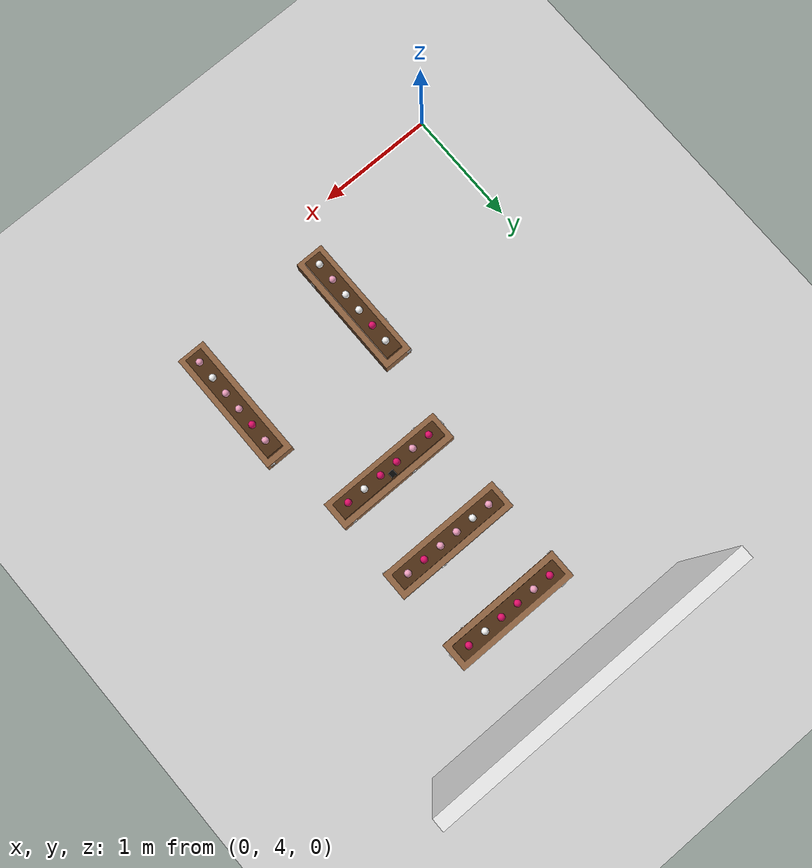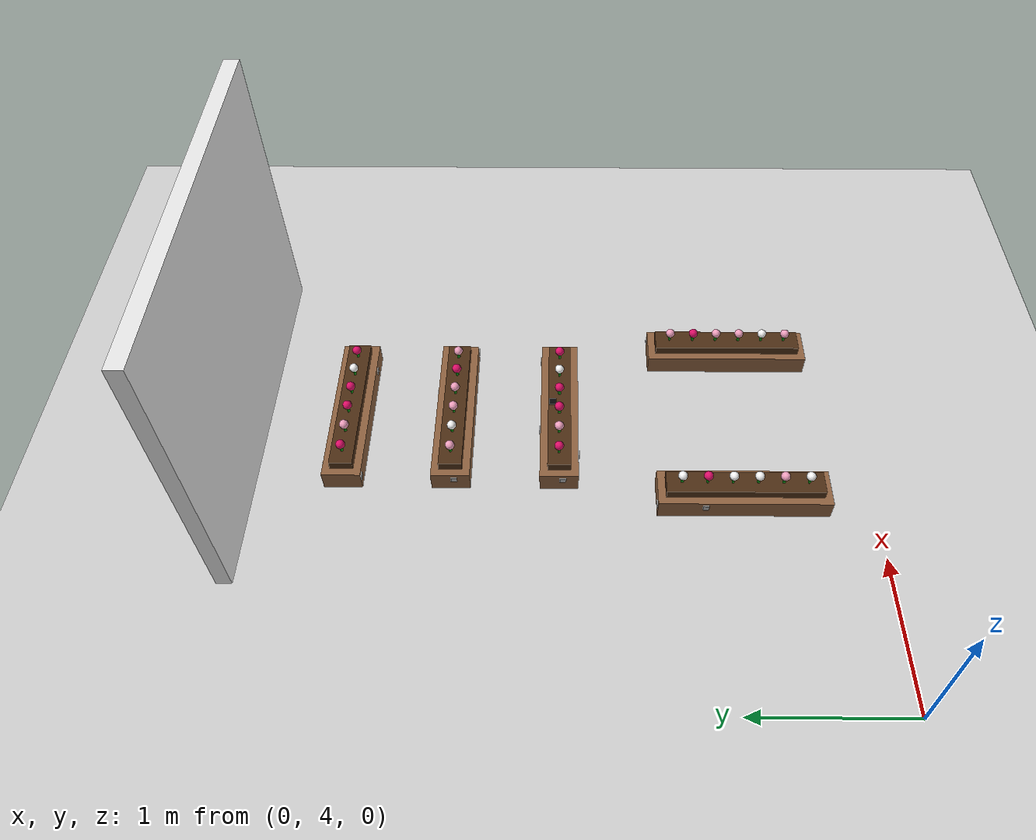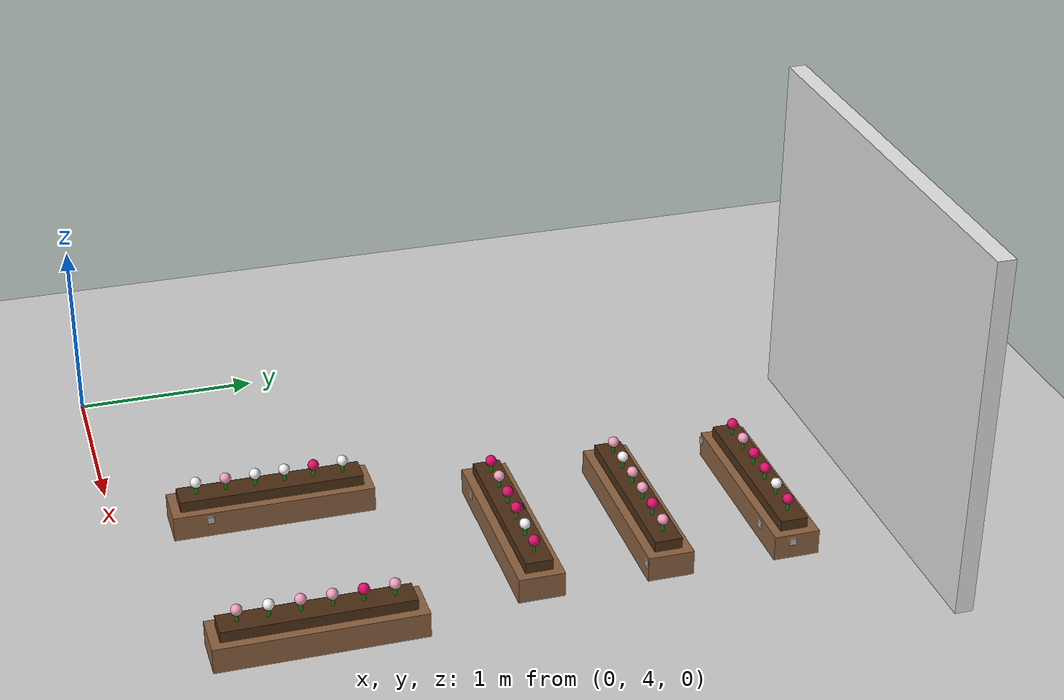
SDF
<sdf version="1.6">
 <world name="greenhouse">
  <include><uri>model://sun</uri></include>
  <include><uri>model://ground_plane</uri></include>
  <model name="wall_north">
   <static>true</static>
   <pose>2.0500 8.0500 1.0000 0 0 0</pose>
   <link name="link">
    <collision name="collision"><geometry><box><size>2.5000 0.1000 2.0000</size></box></geometry></collision>
    <visual name="visual">
     <geometry><box><size>2.5000 0.1000 2.0000</size></box></geometry>
     <material><ambient>0.85 0.85 0.85 1</ambient><diffuse>0.90 0.90 0.90 1</diffuse></material>
    </visual>
   </link>
  </model>
  <model name="table1">
   <static>true</static>
   <pose>2.0500 7.4250 0.0700 0 0 0</pose>
   <link name="link">
    <collision name="collision"><geometry><box><size>1.1000 0.2500 0.1400</size></box></geometry></collision>
    <visual name="visual">
     <geometry><box><size>1.1000 0.2500 0.1400</size></box></geometry>
     <material><ambient>0.45 0.30 0.20 1</ambient><diffuse>0.55 0.38 0.25 1</diffuse></material>
    </visual>
   </link>
  </model>
  <model name="table2">
   <static>true</static>
   <pose>2.0500 6.7250 0.0700 0 0 0</pose>
   <link name="link">
    <collision name="collision"><geometry><box><size>1.1000 0.2500 0.1400</size></box></geometry></collision>
    <visual name="visual">
     <geometry><box><size>1.1000 0.2500 0.1400</size></box></geometry>
     <material><ambient>0.45 0.30 0.20 1</ambient><diffuse>0.55 0.38 0.25 1</diffuse></material>
    </visual>
   </link>
  </model>
  <model name="table3">
   <static>true</static>
   <pose>2.0500 6.0250 0.0700 0 0 0</pose>
   <link name="link">
    <collision name="collision"><geometry><box><size>1.1000 0.2500 0.1400</size></box></geometry></collision>
    <visual name="visual">
     <geometry><box><size>1.1000 0.2500 0.1400</size></box></geometry>
     <material><ambient>0.45 0.30 0.20 1</ambient><diffuse>0.55 0.38 0.25 1</diffuse></material>
    </visual>
   </link>
  </model>
  <model name="table4">
   <static>true</static>
   <pose>1.4250 4.8500 0.0700 0 0 0</pose>
   <link name="link">
    <collision name="collision"><geometry><box><size>0.2500 1.1000 0.1400</size></box></geometry></collision>
    <visual name="visual">
     <geometry><box><size>0.2500 1.1000 0.1400</size></box></geometry>
     <material><ambient>0.45 0.30 0.20 1</ambient><diffuse>0.55 0.38 0.25 1</diffuse></material>
    </visual>
   </link>
  </model>
  <model name="table5">
   <static>true</static>
   <pose>2.6250 4.8500 0.0700 0 0 0</pose>
   <link name="link">
    <collision name="collision"><geometry><box><size>0.2500 1.1000 0.1400</size></box></geometry></collision>
    <visual name="visual">
     <geometry><box><size>0.2500 1.1000 0.1400</size></box></geometry>
     <material><ambient>0.45 0.30 0.20 1</ambient><diffuse>0.55 0.38 0.25 1</diffuse></material>
    </visual>
   </link>
  </model>
  <model name="trough_table_0">
   <static>true</static>
   <pose>2.0500 7.4250 0.1700 0 0 0</pose>
   <link name="link">
    <visual name="visual">
     <geometry><box><size>1.0000 0.1500 0.0600</size></box></geometry>
     <material><ambient>0.20 0.12 0.05 1</ambient><diffuse>0.30 0.18 0.08 1</diffuse></material>
    </visual>
   </link>
  </model>
  <model name="flower_0_red">
   <static>true</static>
   <pose>1.6500 7.4250 0 0 0 0</pose>
   <link name="link">
    <visual name="stem">
     <pose>0 0 0.2250 0 0 0</pose>
     <geometry><cylinder><radius>0.009</radius><length>0.0500</length></cylinder></geometry>
     <material><ambient>0.05 0.40 0.05 1</ambient><diffuse>0.05 0.52 0.05 1</diffuse></material>
    </visual>
    <visual name="blossom">
     <pose>0 0 0.2665 0 0 0</pose>
     <geometry><sphere><radius>0.0300</radius></sphere></geometry>
     <material>
      <ambient>0.32 0.02 0.15 1</ambient>
      <diffuse>0.86 0.05 0.40 1</diffuse>
      <emissive>0.40 0.00 0.18 1</emissive>
     </material>
    </visual>
   </link>
  </model>
  <model name="flower_1_pink">
   <static>true</static>
   <pose>1.8100 7.4250 0 0 0 0</pose>
   <link name="link">
    <visual name="stem">
     <pose>0 0 0.2250 0 0 0</pose>
     <geometry><cylinder><radius>0.009</radius><length>0.0500</length></cylinder></geometry>
     <material><ambient>0.05 0.40 0.05 1</ambient><diffuse>0.05 0.52 0.05 1</diffuse></material>
    </visual>
    <visual name="blossom">
     <pose>0 0 0.2665 0 0 0</pose>
     <geometry><sphere><radius>0.0300</radius></sphere></geometry>
     <material>
      <ambient>0.40 0.26 0.31 1</ambient>
      <diffuse>0.93 0.62 0.74 1</diffuse>
      <emissive>0.18 0.06 0.11 1</emissive>
     </material>
    </visual>
   </link>
  </model>
  <model name="flower_2_red">
   <static>true</static>
   <pose>1.9700 7.4250 0 0 0 0</pose>
   <link name="link">
    <visual name="stem">
     <pose>0 0 0.2250 0 0 0</pose>
     <geometry><cylinder><radius>0.009</radius><length>0.0500</length></cylinder></geometry>
     <material><ambient>0.05 0.40 0.05 1</ambient><diffuse>0.05 0.52 0.05 1</diffuse></material>
    </visual>
    <visual name="blossom">
     <pose>0 0 0.2665 0 0 0</pose>
     <geometry><sphere><radius>0.0300</radius></sphere></geometry>
     <material>
      <ambient>0.32 0.02 0.15 1</ambient>
      <diffuse>0.86 0.05 0.40 1</diffuse>
      <emissive>0.40 0.00 0.18 1</emissive>
     </material>
    </visual>
   </link>
  </model>
  <model name="flower_3_red">
   <static>true</static>
   <pose>2.1300 7.4250 0 0 0 0</pose>
   <link name="link">
    <visual name="stem">
     <pose>0 0 0.2250 0 0 0</pose>
     <geometry><cylinder><radius>0.009</radius><length>0.0500</length></cylinder></geometry>
     <material><ambient>0.05 0.40 0.05 1</ambient><diffuse>0.05 0.52 0.05 1</diffuse></material>
    </visual>
    <visual name="blossom">
     <pose>0 0 0.2665 0 0 0</pose>
     <geometry><sphere><radius>0.0300</radius></sphere></geometry>
     <material>
      <ambient>0.32 0.02 0.15 1</ambient>
      <diffuse>0.86 0.05 0.40 1</diffuse>
      <emissive>0.40 0.00 0.18 1</emissive>
     </material>
    </visual>
   </link>
  </model>
  <model name="flower_4_white">
   <static>true</static>
   <pose>2.2900 7.4250 0 0 0 0</pose>
   <link name="link">
    <visual name="stem">
     <pose>0 0 0.2250 0 0 0</pose>
     <geometry><cylinder><radius>0.009</radius><length>0.0500</length></cylinder></geometry>
     <material><ambient>0.05 0.40 0.05 1</ambient><diffuse>0.05 0.52 0.05 1</diffuse></material>
    </visual>
    <visual name="blossom">
     <pose>0 0 0.2665 0 0 0</pose>
     <geometry><sphere><radius>0.0300</radius></sphere></geometry>
     <material>
      <ambient>0.42 0.42 0.42 1</ambient>
      <diffuse>0.95 0.95 0.95 1</diffuse>
      <emissive>0.40 0.40 0.40 1</emissive>
     </material>
    </visual>
   </link>
  </model>
  <model name="flower_5_red">
   <static>true</static>
   <pose>2.4500 7.4250 0 0 0 0</pose>
   <link name="link">
    <visual name="stem">
     <pose>0 0 0.2250 0 0 0</pose>
     <geometry><cylinder><radius>0.009</radius><length>0.0500</length></cylinder></geometry>
     <material><ambient>0.05 0.40 0.05 1</ambient><diffuse>0.05 0.52 0.05 1</diffuse></material>
    </visual>
    <visual name="blossom">
     <pose>0 0 0.2665 0 0 0</pose>
     <geometry><sphere><radius>0.0300</radius></sphere></geometry>
     <material>
      <ambient>0.32 0.02 0.15 1</ambient>
      <diffuse>0.86 0.05 0.40 1</diffuse>
      <emissive>0.40 0.00 0.18 1</emissive>
     </material>
    </visual>
   </link>
  </model>
  <model name="trough_table_2">
   <static>true</static>
   <pose>2.0500 6.7250 0.1700 0 0 0</pose>
   <link name="link">
    <visual name="visual">
     <geometry><box><size>1.0000 0.1500 0.0600</size></box></geometry>
     <material><ambient>0.20 0.12 0.05 1</ambient><diffuse>0.30 0.18 0.08 1</diffuse></material>
    </visual>
   </link>
  </model>
  <model name="flower_12_pink">
   <static>true</static>
   <pose>1.6500 6.7250 0 0 0 0</pose>
   <link name="link">
    <visual name="stem">
     <pose>0 0 0.2250 0 0 0</pose>
     <geometry><cylinder><radius>0.009</radius><length>0.0500</length></cylinder></geometry>
     <material><ambient>0.05 0.40 0.05 1</ambient><diffuse>0.05 0.52 0.05 1</diffuse></material>
    </visual>
    <visual name="blossom">
     <pose>0 0 0.2665 0 0 0</pose>
     <geometry><sphere><radius>0.0300</radius></sphere></geometry>
     <material>
      <ambient>0.40 0.26 0.31 1</ambient>
      <diffuse>0.93 0.62 0.74 1</diffuse>
      <emissive>0.18 0.06 0.11 1</emissive>
     </material>
    </visual>
   </link>
  </model>
  <model name="flower_13_white">
   <static>true</static>
   <pose>1.8100 6.7250 0 0 0 0</pose>
   <link name="link">
    <visual name="stem">
     <pose>0 0 0.2250 0 0 0</pose>
     <geometry><cylinder><radius>0.009</radius><length>0.0500</length></cylinder></geometry>
     <material><ambient>0.05 0.40 0.05 1</ambient><diffuse>0.05 0.52 0.05 1</diffuse></material>
    </visual>
    <visual name="blossom">
     <pose>0 0 0.2665 0 0 0</pose>
     <geometry><sphere><radius>0.0300</radius></sphere></geometry>
     <material>
      <ambient>0.42 0.42 0.42 1</ambient>
      <diffuse>0.95 0.95 0.95 1</diffuse>
      <emissive>0.40 0.40 0.40 1</emissive>
     </material>
    </visual>
   </link>
  </model>
  <model name="flower_14_pink">
   <static>true</static>
   <pose>1.9700 6.7250 0 0 0 0</pose>
   <link name="link">
    <visual name="stem">
     <pose>0 0 0.2250 0 0 0</pose>
     <geometry><cylinder><radius>0.009</radius><length>0.0500</length></cylinder></geometry>
     <material><ambient>0.05 0.40 0.05 1</ambient><diffuse>0.05 0.52 0.05 1</diffuse></material>
    </visual>
    <visual name="blossom">
     <pose>0 0 0.2665 0 0 0</pose>
     <geometry><sphere><radius>0.0300</radius></sphere></geometry>
     <material>
      <ambient>0.40 0.26 0.31 1</ambient>
      <diffuse>0.93 0.62 0.74 1</diffuse>
      <emissive>0.18 0.06 0.11 1</emissive>
     </material>
    </visual>
   </link>
  </model>
  <model name="flower_15_pink">
   <static>true</static>
   <pose>2.1300 6.7250 0 0 0 0</pose>
   <link name="link">
    <visual name="stem">
     <pose>0 0 0.2250 0 0 0</pose>
     <geometry><cylinder><radius>0.009</radius><length>0.0500</length></cylinder></geometry>
     <material><ambient>0.05 0.40 0.05 1</ambient><diffuse>0.05 0.52 0.05 1</diffuse></material>
    </visual>
    <visual name="blossom">
     <pose>0 0 0.2665 0 0 0</pose>
     <geometry><sphere><radius>0.0300</radius></sphere></geometry>
     <material>
      <ambient>0.40 0.26 0.31 1</ambient>
      <diffuse>0.93 0.62 0.74 1</diffuse>
      <emissive>0.18 0.06 0.11 1</emissive>
     </material>
    </visual>
   </link>
  </model>
  <model name="flower_16_red">
   <static>true</static>
   <pose>2.2900 6.7250 0 0 0 0</pose>
   <link name="link">
    <visual name="stem">
     <pose>0 0 0.2250 0 0 0</pose>
     <geometry><cylinder><radius>0.009</radius><length>0.0500</length></cylinder></geometry>
     <material><ambient>0.05 0.40 0.05 1</ambient><diffuse>0.05 0.52 0.05 1</diffuse></material>
    </visual>
    <visual name="blossom">
     <pose>0 0 0.2665 0 0 0</pose>
     <geometry><sphere><radius>0.0300</radius></sphere></geometry>
     <material>
      <ambient>0.32 0.02 0.15 1</ambient>
      <diffuse>0.86 0.05 0.40 1</diffuse>
      <emissive>0.40 0.00 0.18 1</emissive>
     </material>
    </visual>
   </link>
  </model>
  <model name="flower_17_pink">
   <static>true</static>
   <pose>2.4500 6.7250 0 0 0 0</pose>
   <link name="link">
    <visual name="stem">
     <pose>0 0 0.2250 0 0 0</pose>
     <geometry><cylinder><radius>0.009</radius><length>0.0500</length></cylinder></geometry>
     <material><ambient>0.05 0.40 0.05 1</ambient><diffuse>0.05 0.52 0.05 1</diffuse></material>
    </visual>
    <visual name="blossom">
     <pose>0 0 0.2665 0 0 0</pose>
     <geometry><sphere><radius>0.0300</radius></sphere></geometry>
     <material>
      <ambient>0.40 0.26 0.31 1</ambient>
      <diffuse>0.93 0.62 0.74 1</diffuse>
      <emissive>0.18 0.06 0.11 1</emissive>
     </material>
    </visual>
   </link>
  </model>
  <model name="trough_table_3">
   <static>true</static>
   <pose>2.0500 6.0250 0.1700 0 0 0</pose>
   <link name="link">
    <visual name="visual">
     <geometry><box><size>1.0000 0.1500 0.0600</size></box></geometry>
     <material><ambient>0.20 0.12 0.05 1</ambient><diffuse>0.30 0.18 0.08 1</diffuse></material>
    </visual>
   </link>
  </model>
  <model name="flower_18_red">
   <static>true</static>
   <pose>1.6500 6.0250 0 0 0 0</pose>
   <link name="link">
    <visual name="stem">
     <pose>0 0 0.2250 0 0 0</pose>
     <geometry><cylinder><radius>0.009</radius><length>0.0500</length></cylinder></geometry>
     <material><ambient>0.05 0.40 0.05 1</ambient><diffuse>0.05 0.52 0.05 1</diffuse></material>
    </visual>
    <visual name="blossom">
     <pose>0 0 0.2665 0 0 0</pose>
     <geometry><sphere><radius>0.0300</radius></sphere></geometry>
     <material>
      <ambient>0.32 0.02 0.15 1</ambient>
      <diffuse>0.86 0.05 0.40 1</diffuse>
      <emissive>0.40 0.00 0.18 1</emissive>
     </material>
    </visual>
   </link>
  </model>
  <model name="flower_19_pink">
   <static>true</static>
   <pose>1.8100 6.0250 0 0 0 0</pose>
   <link name="link">
    <visual name="stem">
     <pose>0 0 0.2250 0 0 0</pose>
     <geometry><cylinder><radius>0.009</radius><length>0.0500</length></cylinder></geometry>
     <material><ambient>0.05 0.40 0.05 1</ambient><diffuse>0.05 0.52 0.05 1</diffuse></material>
    </visual>
    <visual name="blossom">
     <pose>0 0 0.2665 0 0 0</pose>
     <geometry><sphere><radius>0.0300</radius></sphere></geometry>
     <material>
      <ambient>0.40 0.26 0.31 1</ambient>
      <diffuse>0.93 0.62 0.74 1</diffuse>
      <emissive>0.18 0.06 0.11 1</emissive>
     </material>
    </visual>
   </link>
  </model>
  <model name="flower_20_red">
   <static>true</static>
   <pose>1.9700 6.0250 0 0 0 0</pose>
   <link name="link">
    <visual name="stem">
     <pose>0 0 0.2250 0 0 0</pose>
     <geometry><cylinder><radius>0.009</radius><length>0.0500</length></cylinder></geometry>
     <material><ambient>0.05 0.40 0.05 1</ambient><diffuse>0.05 0.52 0.05 1</diffuse></material>
    </visual>
    <visual name="blossom">
     <pose>0 0 0.2665 0 0 0</pose>
     <geometry><sphere><radius>0.0300</radius></sphere></geometry>
     <material>
      <ambient>0.32 0.02 0.15 1</ambient>
      <diffuse>0.86 0.05 0.40 1</diffuse>
      <emissive>0.40 0.00 0.18 1</emissive>
     </material>
    </visual>
   </link>
  </model>
  <model name="flower_21_red">
   <static>true</static>
   <pose>2.1300 6.0250 0 0 0 0</pose>
   <link name="link">
    <visual name="stem">
     <pose>0 0 0.2250 0 0 0</pose>
     <geometry><cylinder><radius>0.009</radius><length>0.0500</length></cylinder></geometry>
     <material><ambient>0.05 0.40 0.05 1</ambient><diffuse>0.05 0.52 0.05 1</diffuse></material>
    </visual>
    <visual name="blossom">
     <pose>0 0 0.2665 0 0 0</pose>
     <geometry><sphere><radius>0.0300</radius></sphere></geometry>
     <material>
      <ambient>0.32 0.02 0.15 1</ambient>
      <diffuse>0.86 0.05 0.40 1</diffuse>
      <emissive>0.40 0.00 0.18 1</emissive>
     </material>
    </visual>
   </link>
  </model>
  <model name="flower_22_white">
   <static>true</static>
   <pose>2.2900 6.0250 0 0 0 0</pose>
   <link name="link">
    <visual name="stem">
     <pose>0 0 0.2250 0 0 0</pose>
     <geometry><cylinder><radius>0.009</radius><length>0.0500</length></cylinder></geometry>
     <material><ambient>0.05 0.40 0.05 1</ambient><diffuse>0.05 0.52 0.05 1</diffuse></material>
    </visual>
    <visual name="blossom">
     <pose>0 0 0.2665 0 0 0</pose>
     <geometry><sphere><radius>0.0300</radius></sphere></geometry>
     <material>
      <ambient>0.42 0.42 0.42 1</ambient>
      <diffuse>0.95 0.95 0.95 1</diffuse>
      <emissive>0.40 0.40 0.40 1</emissive>
     </material>
    </visual>
   </link>
  </model>
  <model name="flower_23_red">
   <static>true</static>
   <pose>2.4500 6.0250 0 0 0 0</pose>
   <link name="link">
    <visual name="stem">
     <pose>0 0 0.2250 0 0 0</pose>
     <geometry><cylinder><radius>0.009</radius><length>0.0500</length></cylinder></geometry>
     <material><ambient>0.05 0.40 0.05 1</ambient><diffuse>0.05 0.52 0.05 1</diffuse></material>
    </visual>
    <visual name="blossom">
     <pose>0 0 0.2665 0 0 0</pose>
     <geometry><sphere><radius>0.0300</radius></sphere></geometry>
     <material>
      <ambient>0.32 0.02 0.15 1</ambient>
      <diffuse>0.86 0.05 0.40 1</diffuse>
      <emissive>0.40 0.00 0.18 1</emissive>
     </material>
    </visual>
   </link>
  </model>
  <model name="bug_24">
   <static>true</static>
   <pose>2.0500 6.0700 0.2150 0 0 0</pose>
   <link name="link">
    <visual name="visual">
     <geometry><box><size>0.0500 0.0500 0.008</size></box></geometry>
     <material><ambient>0.02 0.02 0.02 1</ambient><diffuse>0.02 0.02 0.02 1</diffuse></material>
    </visual>
   </link>
  </model>
  <model name="trough_table_4">
   <static>true</static>
   <pose>1.4250 4.8500 0.1700 0 0 0</pose>
   <link name="link">
    <visual name="visual">
     <geometry><box><size>0.1500 1.0000 0.0600</size></box></geometry>
     <material><ambient>0.20 0.12 0.05 1</ambient><diffuse>0.30 0.18 0.08 1</diffuse></material>
    </visual>
   </link>
  </model>
  <model name="flower_25_white">
   <static>true</static>
   <pose>1.4250 4.4500 0 0 0 0</pose>
   <link name="link">
    <visual name="stem">
     <pose>0 0 0.2250 0 0 0</pose>
     <geometry><cylinder><radius>0.009</radius><length>0.0500</length></cylinder></geometry>
     <material><ambient>0.05 0.40 0.05 1</ambient><diffuse>0.05 0.52 0.05 1</diffuse></material>
    </visual>
    <visual name="blossom">
     <pose>0 0 0.2665 0 0 0</pose>
     <geometry><sphere><radius>0.0300</radius></sphere></geometry>
     <material>
      <ambient>0.42 0.42 0.42 1</ambient>
      <diffuse>0.95 0.95 0.95 1</diffuse>
      <emissive>0.40 0.40 0.40 1</emissive>
     </material>
    </visual>
   </link>
  </model>
  <model name="flower_26_pink">
   <static>true</static>
   <pose>1.4250 4.6100 0 0 0 0</pose>
   <link name="link">
    <visual name="stem">
     <pose>0 0 0.2250 0 0 0</pose>
     <geometry><cylinder><radius>0.009</radius><length>0.0500</length></cylinder></geometry>
     <material><ambient>0.05 0.40 0.05 1</ambient><diffuse>0.05 0.52 0.05 1</diffuse></material>
    </visual>
    <visual name="blossom">
     <pose>0 0 0.2665 0 0 0</pose>
     <geometry><sphere><radius>0.0300</radius></sphere></geometry>
     <material>
      <ambient>0.40 0.26 0.31 1</ambient>
      <diffuse>0.93 0.62 0.74 1</diffuse>
      <emissive>0.18 0.06 0.11 1</emissive>
     </material>
    </visual>
   </link>
  </model>
  <model name="flower_27_white">
   <static>true</static>
   <pose>1.4250 4.7700 0 0 0 0</pose>
   <link name="link">
    <visual name="stem">
     <pose>0 0 0.2250 0 0 0</pose>
     <geometry><cylinder><radius>0.009</radius><length>0.0500</length></cylinder></geometry>
     <material><ambient>0.05 0.40 0.05 1</ambient><diffuse>0.05 0.52 0.05 1</diffuse></material>
    </visual>
    <visual name="blossom">
     <pose>0 0 0.2665 0 0 0</pose>
     <geometry><sphere><radius>0.0300</radius></sphere></geometry>
     <material>
      <ambient>0.42 0.42 0.42 1</ambient>
      <diffuse>0.95 0.95 0.95 1</diffuse>
      <emissive>0.40 0.40 0.40 1</emissive>
     </material>
    </visual>
   </link>
  </model>
  <model name="flower_28_white">
   <static>true</static>
   <pose>1.4250 4.9300 0 0 0 0</pose>
   <link name="link">
    <visual name="stem">
     <pose>0 0 0.2250 0 0 0</pose>
     <geometry><cylinder><radius>0.009</radius><length>0.0500</length></cylinder></geometry>
     <material><ambient>0.05 0.40 0.05 1</ambient><diffuse>0.05 0.52 0.05 1</diffuse></material>
    </visual>
    <visual name="blossom">
     <pose>0 0 0.2665 0 0 0</pose>
     <geometry><sphere><radius>0.0300</radius></sphere></geometry>
     <material>
      <ambient>0.42 0.42 0.42 1</ambient>
      <diffuse>0.95 0.95 0.95 1</diffuse>
      <emissive>0.40 0.40 0.40 1</emissive>
     </material>
    </visual>
   </link>
  </model>
  <model name="flower_29_red">
   <static>true</static>
   <pose>1.4250 5.0900 0 0 0 0</pose>
   <link name="link">
    <visual name="stem">
     <pose>0 0 0.2250 0 0 0</pose>
     <geometry><cylinder><radius>0.009</radius><length>0.0500</length></cylinder></geometry>
     <material><ambient>0.05 0.40 0.05 1</ambient><diffuse>0.05 0.52 0.05 1</diffuse></material>
    </visual>
    <visual name="blossom">
     <pose>0 0 0.2665 0 0 0</pose>
     <geometry><sphere><radius>0.0300</radius></sphere></geometry>
     <material>
      <ambient>0.32 0.02 0.15 1</ambient>
      <diffuse>0.86 0.05 0.40 1</diffuse>
      <emissive>0.40 0.00 0.18 1</emissive>
     </material>
    </visual>
   </link>
  </model>
  <model name="flower_30_white">
   <static>true</static>
   <pose>1.4250 5.2500 0 0 0 0</pose>
   <link name="link">
    <visual name="stem">
     <pose>0 0 0.2250 0 0 0</pose>
     <geometry><cylinder><radius>0.009</radius><length>0.0500</length></cylinder></geometry>
     <material><ambient>0.05 0.40 0.05 1</ambient><diffuse>0.05 0.52 0.05 1</diffuse></material>
    </visual>
    <visual name="blossom">
     <pose>0 0 0.2665 0 0 0</pose>
     <geometry><sphere><radius>0.0300</radius></sphere></geometry>
     <material>
      <ambient>0.42 0.42 0.42 1</ambient>
      <diffuse>0.95 0.95 0.95 1</diffuse>
      <emissive>0.40 0.40 0.40 1</emissive>
     </material>
    </visual>
   </link>
  </model>
  <model name="trough_table_5">
   <static>true</static>
   <pose>2.6250 4.8500 0.1700 0 0 0</pose>
   <link name="link">
    <visual name="visual">
     <geometry><box><size>0.1500 1.0000 0.0600</size></box></geometry>
     <material><ambient>0.20 0.12 0.05 1</ambient><diffuse>0.30 0.18 0.08 1</diffuse></material>
    </visual>
   </link>
  </model>
  <model name="flower_31_pink">
   <static>true</static>
   <pose>2.6250 4.4500 0 0 0 0</pose>
   <link name="link">
    <visual name="stem">
     <pose>0 0 0.2250 0 0 0</pose>
     <geometry><cylinder><radius>0.009</radius><length>0.0500</length></cylinder></geometry>
     <material><ambient>0.05 0.40 0.05 1</ambient><diffuse>0.05 0.52 0.05 1</diffuse></material>
    </visual>
    <visual name="blossom">
     <pose>0 0 0.2665 0 0 0</pose>
     <geometry><sphere><radius>0.0300</radius></sphere></geometry>
     <material>
      <ambient>0.40 0.26 0.31 1</ambient>
      <diffuse>0.93 0.62 0.74 1</diffuse>
      <emissive>0.18 0.06 0.11 1</emissive>
     </material>
    </visual>
   </link>
  </model>
  <model name="flower_32_white">
   <static>true</static>
   <pose>2.6250 4.6100 0 0 0 0</pose>
   <link name="link">
    <visual name="stem">
     <pose>0 0 0.2250 0 0 0</pose>
     <geometry><cylinder><radius>0.009</radius><length>0.0500</length></cylinder></geometry>
     <material><ambient>0.05 0.40 0.05 1</ambient><diffuse>0.05 0.52 0.05 1</diffuse></material>
    </visual>
    <visual name="blossom">
     <pose>0 0 0.2665 0 0 0</pose>
     <geometry><sphere><radius>0.0300</radius></sphere></geometry>
     <material>
      <ambient>0.42 0.42 0.42 1</ambient>
      <diffuse>0.95 0.95 0.95 1</diffuse>
      <emissive>0.40 0.40 0.40 1</emissive>
     </material>
    </visual>
   </link>
  </model>
  <model name="flower_33_pink">
   <static>true</static>
   <pose>2.6250 4.7700 0 0 0 0</pose>
   <link name="link">
    <visual name="stem">
     <pose>0 0 0.2250 0 0 0</pose>
     <geometry><cylinder><radius>0.009</radius><length>0.0500</length></cylinder></geometry>
     <material><ambient>0.05 0.40 0.05 1</ambient><diffuse>0.05 0.52 0.05 1</diffuse></material>
    </visual>
    <visual name="blossom">
     <pose>0 0 0.2665 0 0 0</pose>
     <geometry><sphere><radius>0.0300</radius></sphere></geometry>
     <material>
      <ambient>0.40 0.26 0.31 1</ambient>
      <diffuse>0.93 0.62 0.74 1</diffuse>
      <emissive>0.18 0.06 0.11 1</emissive>
     </material>
    </visual>
   </link>
  </model>
  <model name="flower_34_pink">
   <static>true</static>
   <pose>2.6250 4.9300 0 0 0 0</pose>
   <link name="link">
    <visual name="stem">
     <pose>0 0 0.2250 0 0 0</pose>
     <geometry><cylinder><radius>0.009</radius><length>0.0500</length></cylinder></geometry>
     <material><ambient>0.05 0.40 0.05 1</ambient><diffuse>0.05 0.52 0.05 1</diffuse></material>
    </visual>
    <visual name="blossom">
     <pose>0 0 0.2665 0 0 0</pose>
     <geometry><sphere><radius>0.0300</radius></sphere></geometry>
     <material>
      <ambient>0.40 0.26 0.31 1</ambient>
      <diffuse>0.93 0.62 0.74 1</diffuse>
      <emissive>0.18 0.06 0.11 1</emissive>
     </material>
    </visual>
   </link>
  </model>
  <model name="flower_35_red">
   <static>true</static>
   <pose>2.6250 5.0900 0 0 0 0</pose>
   <link name="link">
    <visual name="stem">
     <pose>0 0 0.2250 0 0 0</pose>
     <geometry><cylinder><radius>0.009</radius><length>0.0500</length></cylinder></geometry>
     <material><ambient>0.05 0.40 0.05 1</ambient><diffuse>0.05 0.52 0.05 1</diffuse></material>
    </visual>
    <visual name="blossom">
     <pose>0 0 0.2665 0 0 0</pose>
     <geometry><sphere><radius>0.0300</radius></sphere></geometry>
     <material>
      <ambient>0.32 0.02 0.15 1</ambient>
      <diffuse>0.86 0.05 0.40 1</diffuse>
      <emissive>0.40 0.00 0.18 1</emissive>
     </material>
    </visual>
   </link>
  </model>
  <model name="flower_36_pink">
   <static>true</static>
   <pose>2.6250 5.2500 0 0 0 0</pose>
   <link name="link">
    <visual name="stem">
     <pose>0 0 0.2250 0 0 0</pose>
     <geometry><cylinder><radius>0.009</radius><length>0.0500</length></cylinder></geometry>
     <material><ambient>0.05 0.40 0.05 1</ambient><diffuse>0.05 0.52 0.05 1</diffuse></material>
    </visual>
    <visual name="blossom">
     <pose>0 0 0.2665 0 0 0</pose>
     <geometry><sphere><radius>0.0300</radius></sphere></geometry>
     <material>
      <ambient>0.40 0.26 0.31 1</ambient>
      <diffuse>0.93 0.62 0.74 1</diffuse>
      <emissive>0.18 0.06 0.11 1</emissive>
     </material>
    </visual>
   </link>
  </model>
  <model name="apriltag_6">
   <static>true</static>
   <pose>1.5200 7.2950 0.1000 0 0 -1.570796</pose>
   <link name="link">
    <collision name="collision"><geometry><box><size>0.0050 0.0400 0.0400</size></box></geometry></collision>
    <visual name="bg_visual">
     <geometry><box><size>0.0050 0.0400 0.0400</size></box></geometry>
     <material><ambient>1.0 1.0 1.0 1</ambient><diffuse>1.0 1.0 1.0 1</diffuse></material>
    </visual>
    <visual name="tag_visual">
     <pose>0.0035 0 0 0 1.57079 0</pose>
     <geometry><plane><normal>0 0 1</normal><size>0.0360 0.0360</size></plane></geometry>
     <material>
      <script>
       <uri>model://apriltags/materials/scripts</uri>
       <uri>model://apriltags/materials/textures</uri>
       <name>AprilTag/Tag36h11_6</name>
      </script>
     </material>
    </visual>
   </link>
  </model>
  <model name="apriltag_7">
   <static>true</static>
   <pose>2.6050 7.4000 0.1000 0 0 0.000000</pose>
   <link name="link">
    <collision name="collision"><geometry><box><size>0.0050 0.0400 0.0400</size></box></geometry></collision>
    <visual name="bg_visual">
     <geometry><box><size>0.0050 0.0400 0.0400</size></box></geometry>
     <material><ambient>1.0 1.0 1.0 1</ambient><diffuse>1.0 1.0 1.0 1</diffuse></material>
    </visual>
    <visual name="tag_visual">
     <pose>0.0035 0 0 0 1.57079 0</pose>
     <geometry><plane><normal>0 0 1</normal><size>0.0360 0.0360</size></plane></geometry>
     <material>
      <script>
       <uri>model://apriltags/materials/scripts</uri>
       <uri>model://apriltags/materials/textures</uri>
       <name>AprilTag/Tag36h11_7</name>
      </script>
     </material>
    </visual>
   </link>
  </model>
  <model name="apriltag_9">
   <static>true</static>
   <pose>2.5800 6.5950 0.1000 0 0 -1.570796</pose>
   <link name="link">
    <collision name="collision"><geometry><box><size>0.0050 0.0400 0.0400</size></box></geometry></collision>
    <visual name="bg_visual">
     <geometry><box><size>0.0050 0.0400 0.0400</size></box></geometry>
     <material><ambient>1.0 1.0 1.0 1</ambient><diffuse>1.0 1.0 1.0 1</diffuse></material>
    </visual>
    <visual name="tag_visual">
     <pose>0.0035 0 0 0 1.57079 0</pose>
     <geometry><plane><normal>0 0 1</normal><size>0.0360 0.0360</size></plane></geometry>
     <material>
      <script>
       <uri>model://apriltags/materials/scripts</uri>
       <uri>model://apriltags/materials/textures</uri>
       <name>AprilTag/Tag36h11_9</name>
      </script>
     </material>
    </visual>
   </link>
  </model>
  <model name="apriltag_11">
   <static>true</static>
   <pose>1.2950 5.1000 0.1000 0 0 3.141593</pose>
   <link name="link">
    <collision name="collision"><geometry><box><size>0.0050 0.0400 0.0400</size></box></geometry></collision>
    <visual name="bg_visual">
     <geometry><box><size>0.0050 0.0400 0.0400</size></box></geometry>
     <material><ambient>1.0 1.0 1.0 1</ambient><diffuse>1.0 1.0 1.0 1</diffuse></material>
    </visual>
    <visual name="tag_visual">
     <pose>0.0035 0 0 0 1.57079 0</pose>
     <geometry><plane><normal>0 0 1</normal><size>0.0360 0.0360</size></plane></geometry>
     <material>
      <script>
       <uri>model://apriltags/materials/scripts</uri>
       <uri>model://apriltags/materials/textures</uri>
       <name>AprilTag/Tag36h11_11</name>
      </script>
     </material>
    </visual>
   </link>
  </model>
  <model name="apriltag_15">
   <static>true</static>
   <pose>1.7000 5.8950 0.1000 0 0 -1.570796</pose>
   <link name="link">
    <collision name="collision"><geometry><box><size>0.0050 0.0400 0.0400</size></box></geometry></collision>
    <visual name="bg_visual">
     <geometry><box><size>0.0050 0.0400 0.0400</size></box></geometry>
     <material><ambient>1.0 1.0 1.0 1</ambient><diffuse>1.0 1.0 1.0 1</diffuse></material>
    </visual>
    <visual name="tag_visual">
     <pose>0.0035 0 0 0 1.57079 0</pose>
     <geometry><plane><normal>0 0 1</normal><size>0.0360 0.0360</size></plane></geometry>
     <material>
      <script>
       <uri>model://apriltags/materials/scripts</uri>
       <uri>model://apriltags/materials/textures</uri>
       <name>AprilTag/Tag36h11_15</name>
      </script>
     </material>
    </visual>
   </link>
  </model>
  <model name="apriltag_21">
   <static>true</static>
   <pose>1.6000 7.5550 0.1000 0 0 1.570796</pose>
   <link name="link">
    <collision name="collision"><geometry><box><size>0.0050 0.0400 0.0400</size></box></geometry></collision>
    <visual name="bg_visual">
     <geometry><box><size>0.0050 0.0400 0.0400</size></box></geometry>
     <material><ambient>1.0 1.0 1.0 1</ambient><diffuse>1.0 1.0 1.0 1</diffuse></material>
    </visual>
    <visual name="tag_visual">
     <pose>0.0035 0 0 0 1.57079 0</pose>
     <geometry><plane><normal>0 0 1</normal><size>0.0360 0.0360</size></plane></geometry>
     <material>
      <script>
       <uri>model://apriltags/materials/scripts</uri>
       <uri>model://apriltags/materials/textures</uri>
       <name>AprilTag/Tag36h11_21</name>
      </script>
     </material>
    </visual>
   </link>
  </model>
  <model name="apriltag_22">
   <static>true</static>
   <pose>1.4950 6.0000 0.1000 0 0 3.141593</pose>
   <link name="link">
    <collision name="collision"><geometry><box><size>0.0050 0.0400 0.0400</size></box></geometry></collision>
    <visual name="bg_visual">
     <geometry><box><size>0.0050 0.0400 0.0400</size></box></geometry>
     <material><ambient>1.0 1.0 1.0 1</ambient><diffuse>1.0 1.0 1.0 1</diffuse></material>
    </visual>
    <visual name="tag_visual">
     <pose>0.0035 0 0 0 1.57079 0</pose>
     <geometry><plane><normal>0 0 1</normal><size>0.0360 0.0360</size></plane></geometry>
     <material>
      <script>
       <uri>model://apriltags/materials/scripts</uri>
       <uri>model://apriltags/materials/textures</uri>
       <name>AprilTag/Tag36h11_22</name>
      </script>
     </material>
    </visual>
   </link>
  </model>
  <model name="apriltag_23">
   <static>true</static>
   <pose>1.5550 4.5000 0.1000 0 0 0.000000</pose>
   <link name="link">
    <collision name="collision"><geometry><box><size>0.0050 0.0400 0.0400</size></box></geometry></collision>
    <visual name="bg_visual">
     <geometry><box><size>0.0050 0.0400 0.0400</size></box></geometry>
     <material><ambient>1.0 1.0 1.0 1</ambient><diffuse>1.0 1.0 1.0 1</diffuse></material>
    </visual>
    <visual name="tag_visual">
     <pose>0.0035 0 0 0 1.57079 0</pose>
     <geometry><plane><normal>0 0 1</normal><size>0.0360 0.0360</size></plane></geometry>
     <material>
      <script>
       <uri>model://apriltags/materials/scripts</uri>
       <uri>model://apriltags/materials/textures</uri>
       <name>AprilTag/Tag36h11_23</name>
      </script>
     </material>
    </visual>
   </link>
  </model>
  <model name="apriltag_24">
   <static>true</static>
   <pose>2.7000 5.4050 0.1000 0 0 1.570796</pose>
   <link name="link">
    <collision name="collision"><geometry><box><size>0.0050 0.0400 0.0400</size></box></geometry></collision>
    <visual name="bg_visual">
     <geometry><box><size>0.0050 0.0400 0.0400</size></box></geometry>
     <material><ambient>1.0 1.0 1.0 1</ambient><diffuse>1.0 1.0 1.0 1</diffuse></material>
    </visual>
    <visual name="tag_visual">
     <pose>0.0035 0 0 0 1.57079 0</pose>
     <geometry><plane><normal>0 0 1</normal><size>0.0360 0.0360</size></plane></geometry>
     <material>
      <script>
       <uri>model://apriltags/materials/scripts</uri>
       <uri>model://apriltags/materials/textures</uri>
       <name>AprilTag/Tag36h11_24</name>
      </script>
     </material>
    </visual>
   </link>
  </model>
  <model name="apriltag_25">
   <static>true</static>
   <pose>2.2000 6.8550 0.1000 0 0 1.570796</pose>
   <link name="link">
    <collision name="collision"><geometry><box><size>0.0050 0.0400 0.0400</size></box></geometry></collision>
    <visual name="bg_visual">
     <geometry><box><size>0.0050 0.0400 0.0400</size></box></geometry>
     <material><ambient>1.0 1.0 1.0 1</ambient><diffuse>1.0 1.0 1.0 1</diffuse></material>
    </visual>
    <visual name="tag_visual">
     <pose>0.0035 0 0 0 1.57079 0</pose>
     <geometry><plane><normal>0 0 1</normal><size>0.0360 0.0360</size></plane></geometry>
     <material>
      <script>
       <uri>model://apriltags/materials/scripts</uri>
       <uri>model://apriltags/materials/textures</uri>
       <name>AprilTag/Tag36h11_25</name>
      </script>
     </material>
    </visual>
   </link>
  </model>
  <model name="apriltag_26">
   <static>true</static>
   <pose>1.9000 6.1550 0.1000 0 0 1.570796</pose>
   <link name="link">
    <collision name="collision"><geometry><box><size>0.0050 0.0400 0.0400</size></box></geometry></collision>
    <visual name="bg_visual">
     <geometry><box><size>0.0050 0.0400 0.0400</size></box></geometry>
     <material><ambient>1.0 1.0 1.0 1</ambient><diffuse>1.0 1.0 1.0 1</diffuse></material>
    </visual>
    <visual name="tag_visual">
     <pose>0.0035 0 0 0 1.57079 0</pose>
     <geometry><plane><normal>0 0 1</normal><size>0.0360 0.0360</size></plane></geometry>
     <material>
      <script>
       <uri>model://apriltags/materials/scripts</uri>
       <uri>model://apriltags/materials/textures</uri>
       <name>AprilTag/Tag36h11_26</name>
      </script>
     </material>
    </visual>
   </link>
  </model>
  <model name="apriltag_27">
   <static>true</static>
   <pose>2.5000 6.1550 0.1000 0 0 1.570796</pose>
   <link name="link">
    <collision name="collision"><geometry><box><size>0.0050 0.0400 0.0400</size></box></geometry></collision>
    <visual name="bg_visual">
     <geometry><box><size>0.0050 0.0400 0.0400</size></box></geometry>
     <material><ambient>1.0 1.0 1.0 1</ambient><diffuse>1.0 1.0 1.0 1</diffuse></material>
    </visual>
    <visual name="tag_visual">
     <pose>0.0035 0 0 0 1.57079 0</pose>
     <geometry><plane><normal>0 0 1</normal><size>0.0360 0.0360</size></plane></geometry>
     <material>
      <script>
       <uri>model://apriltags/materials/scripts</uri>
       <uri>model://apriltags/materials/textures</uri>
       <name>AprilTag/Tag36h11_27</name>
      </script>
     </material>
    </visual>
   </link>
  </model>
  <model name="apriltag_28">
   <static>true</static>
   <pose>1.3200 5.4050 0.1000 0 0 1.570796</pose>
   <link name="link">
    <collision name="collision"><geometry><box><size>0.0050 0.0400 0.0400</size></box></geometry></collision>
    <visual name="bg_visual">
     <geometry><box><size>0.0050 0.0400 0.0400</size></box></geometry>
     <material><ambient>1.0 1.0 1.0 1</ambient><diffuse>1.0 1.0 1.0 1</diffuse></material>
    </visual>
    <visual name="tag_visual">
     <pose>0.0035 0 0 0 1.57079 0</pose>
     <geometry><plane><normal>0 0 1</normal><size>0.0360 0.0360</size></plane></geometry>
     <material>
      <script>
       <uri>model://apriltags/materials/scripts</uri>
       <uri>model://apriltags/materials/textures</uri>
       <name>AprilTag/Tag36h11_28</name>
      </script>
     </material>
    </visual>
   </link>
  </model>
  <model name="apriltag_29">
   <static>true</static>
   <pose>2.4000 7.2950 0.1000 0 0 -1.570796</pose>
   <link name="link">
    <collision name="collision"><geometry><box><size>0.0050 0.0400 0.0400</size></box></geometry></collision>
    <visual name="bg_visual">
     <geometry><box><size>0.0050 0.0400 0.0400</size></box></geometry>
     <material><ambient>1.0 1.0 1.0 1</ambient><diffuse>1.0 1.0 1.0 1</diffuse></material>
    </visual>
    <visual name="tag_visual">
     <pose>0.0035 0 0 0 1.57079 0</pose>
     <geometry><plane><normal>0 0 1</normal><size>0.0360 0.0360</size></plane></geometry>
     <material>
      <script>
       <uri>model://apriltags/materials/scripts</uri>
       <uri>model://apriltags/materials/textures</uri>
       <name>AprilTag/Tag36h11_29</name>
      </script>
     </material>
    </visual>
   </link>
  </model>
  <model name="apriltag_30">
   <static>true</static>
   <pose>1.4950 6.7000 0.1000 0 0 3.141593</pose>
   <link name="link">
    <collision name="collision"><geometry><box><size>0.0050 0.0400 0.0400</size></box></geometry></collision>
    <visual name="bg_visual">
     <geometry><box><size>0.0050 0.0400 0.0400</size></box></geometry>
     <material><ambient>1.0 1.0 1.0 1</ambient><diffuse>1.0 1.0 1.0 1</diffuse></material>
    </visual>
    <visual name="tag_visual">
     <pose>0.0035 0 0 0 1.57079 0</pose>
     <geometry><plane><normal>0 0 1</normal><size>0.0360 0.0360</size></plane></geometry>
     <material>
      <script>
       <uri>model://apriltags/materials/scripts</uri>
       <uri>model://apriltags/materials/textures</uri>
       <name>AprilTag/Tag36h11_30</name>
      </script>
     </material>
    </visual>
   </link>
  </model>
 </world>
</sdf>
